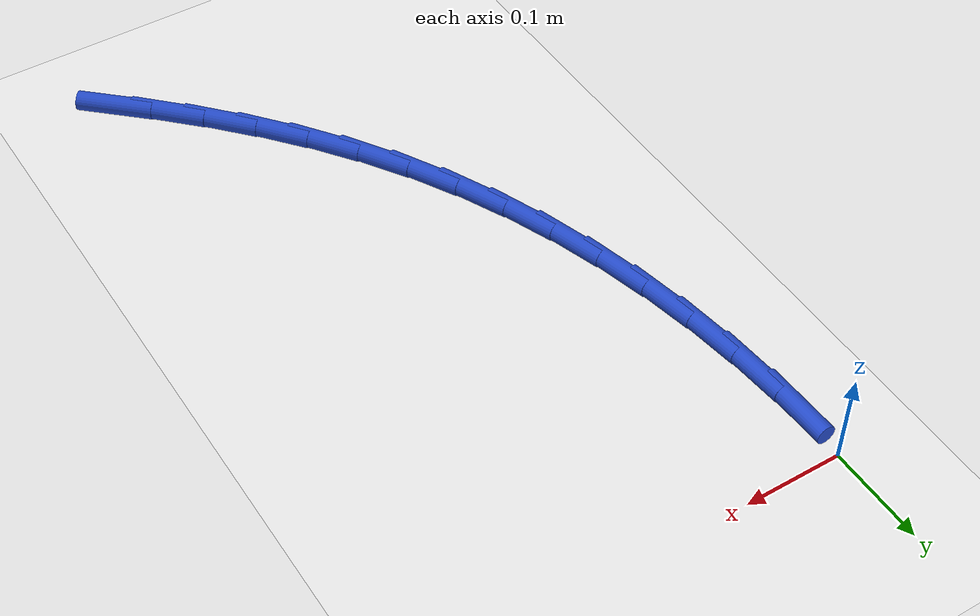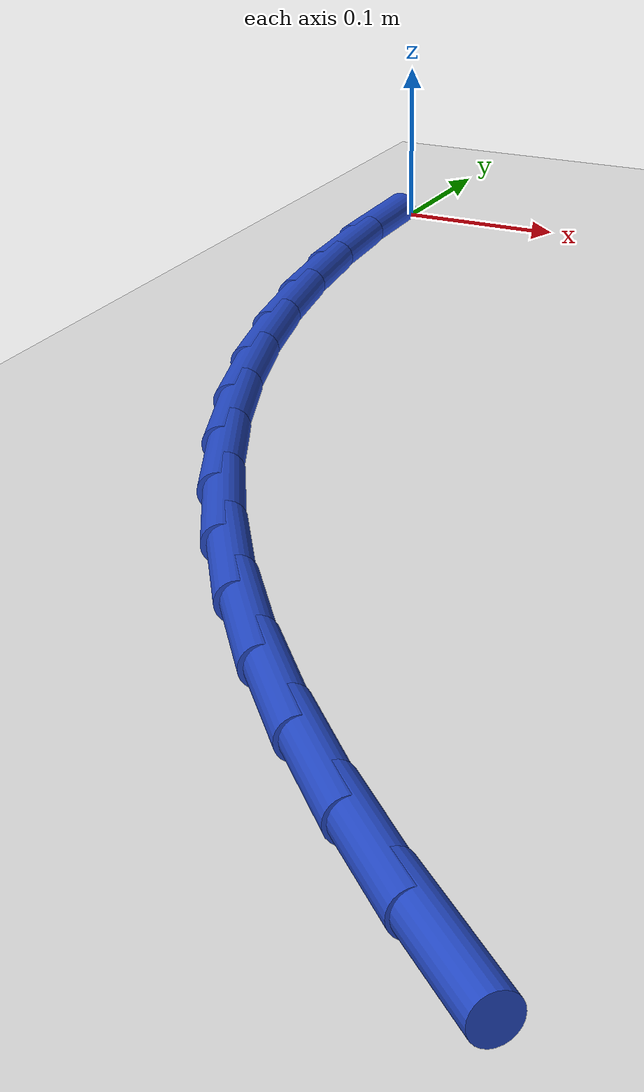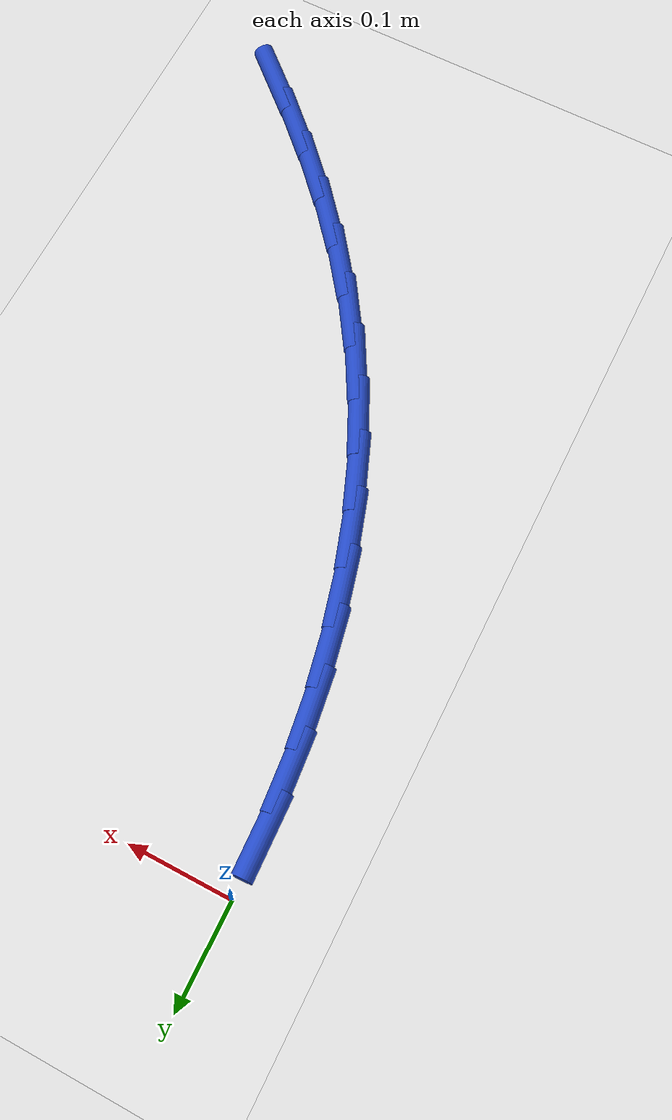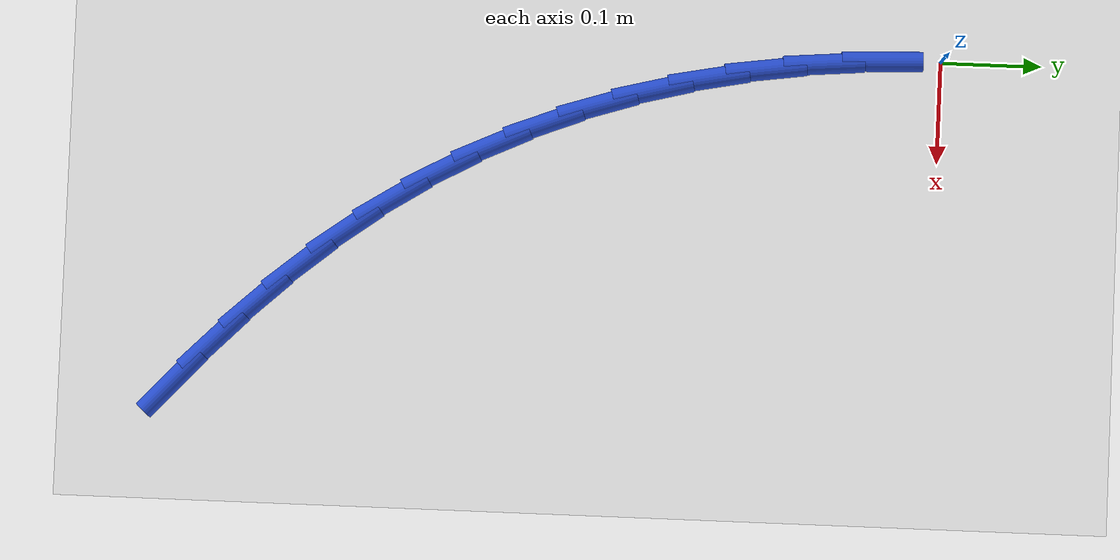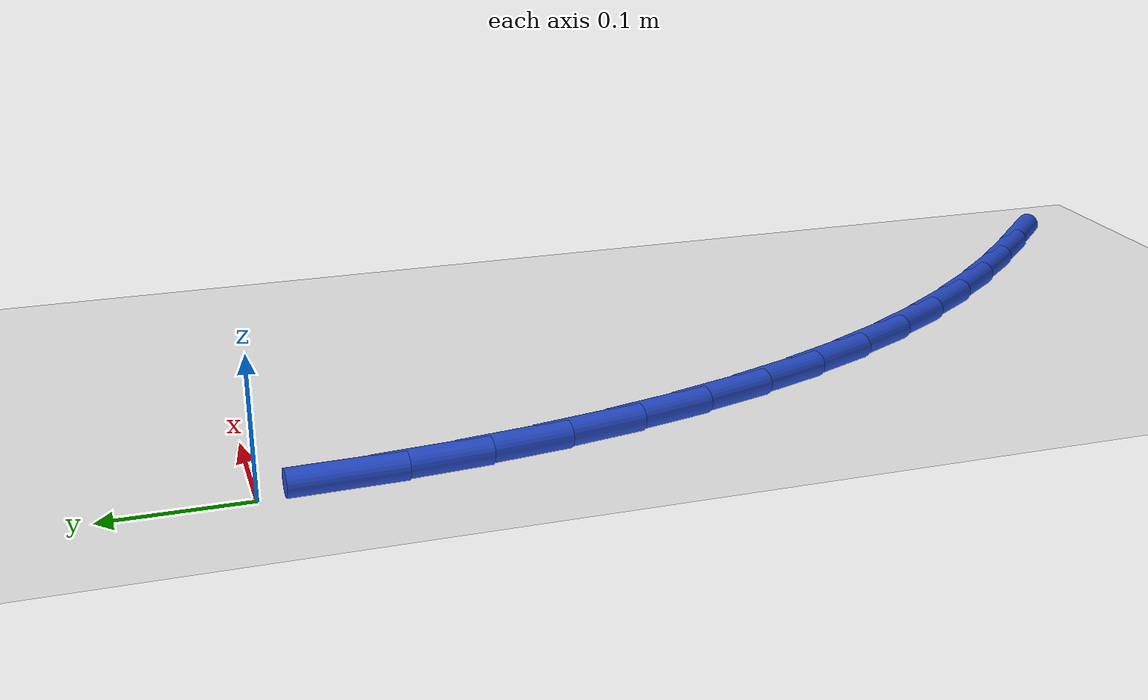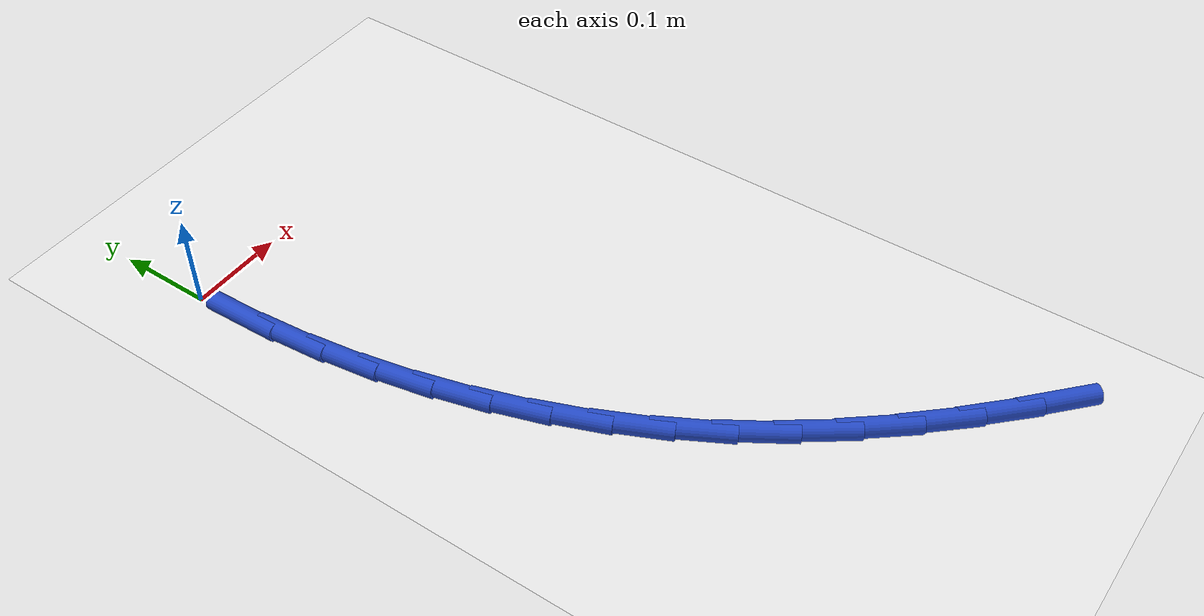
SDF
<sdf version="1.6">
 <world name="default">
  <model name="ground_plane">
   <static>1</static>
   <link name="link">
    <collision name="collision">
     <geometry><plane><normal>0 0 1</normal><size>100 100</size></plane></geometry>
     <surface><friction><ode><mu>100</mu><mu2>50</mu2></ode></friction></surface>
    </collision>
    <visual name="visual">
     <cast_shadows>0</cast_shadows>
     <geometry><plane><normal>0 0 1</normal><size>100 100</size></plane></geometry>
     <material>
      <script><uri>file://media/materials/scripts/gazebo.material</uri><name>Gazebo/WhiteGlow</name></script>
     </material>
    </visual>
   </link>
  </model>
  <model name="line">
   <link name="link_105">
    <pose>0.34368251775665143 -0.741663012240206 0.01 0 1.57 -0.7431842006529641</pose>
    <collision name="collision">
     <geometry><cylinder><radius>0.01</radius><length>0.08</length></cylinder></geometry>
    </collision>
    <visual name="visual">
     <material>
      <script><name>Gazebo/Blue</name><uri>file://media/materials/scripts/gazebo.material</uri></script>
     </material>
     <geometry><cylinder><radius>0.01</radius><length>0.08</length></cylinder></geometry>
    </visual>
   </link>
   <link name="link_106">
    <pose>0.30204947861492987 -0.7034045161289691 0.01 0 1.57 -0.7840330714546652</pose>
    <collision name="collision">
     <geometry><cylinder><radius>0.01</radius><length>0.08</length></cylinder></geometry>
    </collision>
    <visual name="visual">
     <material>
      <script><name>Gazebo/Blue</name><uri>file://media/materials/scripts/gazebo.material</uri></script>
     </material>
     <geometry><cylinder><radius>0.01</radius><length>0.08</length></cylinder></geometry>
    </visual>
   </link>
   <link name="link_107">
    <pose>0.26216180646591725 -0.6636255962703675 0.01 0 1.57 -0.8304283539207813</pose>
    <collision name="collision">
     <geometry><cylinder><radius>0.01</radius><length>0.08</length></cylinder></geometry>
    </collision>
    <visual name="visual">
     <material>
      <script><name>Gazebo/Blue</name><uri>file://media/materials/scripts/gazebo.material</uri></script>
     </material>
     <geometry><cylinder><radius>0.01</radius><length>0.08</length></cylinder></geometry>
    </visual>
   </link>
   <link name="link_108">
    <pose>0.22433551735606722 -0.6222294946271784 0.01 0 1.57 -0.8826118369734751</pose>
    <collision name="collision">
     <geometry><cylinder><radius>0.01</radius><length>0.08</length></cylinder></geometry>
    </collision>
    <visual name="visual">
     <material>
      <script><name>Gazebo/Blue</name><uri>file://media/materials/scripts/gazebo.material</uri></script>
     </material>
     <geometry><cylinder><radius>0.01</radius><length>0.08</length></cylinder></geometry>
    </visual>
   </link>
   <link name="link_109">
    <pose>0.18888662733183484 -0.579119453162181 0.01 0 1.57 -0.9407512387629605</pose>
    <collision name="collision">
     <geometry><cylinder><radius>0.01</radius><length>0.08</length></cylinder></geometry>
    </collision>
    <visual name="visual">
     <material>
      <script><name>Gazebo/Blue</name><uri>file://media/materials/scripts/gazebo.material</uri></script>
     </material>
     <geometry><cylinder><radius>0.01</radius><length>0.08</length></cylinder></geometry>
    </visual>
   </link>
   <link name="link_110">
    <pose>0.15613115243967374 -0.5341987138381531 0.01 0 1.57 -1.0048592606388749</pose>
    <collision name="collision">
     <geometry><cylinder><radius>0.01</radius><length>0.08</length></cylinder></geometry>
    </collision>
    <visual name="visual">
     <material>
      <script><name>Gazebo/Blue</name><uri>file://media/materials/scripts/gazebo.material</uri></script>
     </material>
     <geometry><cylinder><radius>0.01</radius><length>0.08</length></cylinder></geometry>
    </visual>
   </link>
   <link name="link_111">
    <pose>0.1263840195367773 -0.48737136390702657 0.01 0 1.57 -1.0722262604641868</pose>
    <collision name="collision">
     <geometry><cylinder><radius>0.01</radius><length>0.08</length></cylinder></geometry>
    </collision>
    <visual name="visual">
     <material>
      <script><name>Gazebo/Blue</name><uri>file://media/materials/scripts/gazebo.material</uri></script>
     </material>
     <geometry><cylinder><radius>0.01</radius><length>0.08</length></cylinder></geometry>
    </visual>
   </link>
   <link name="link_112">
    <pose>0.09984667742668173 -0.4386295577468035 0.01 0 1.57 -1.1379074792062547</pose>
    <collision name="collision">
     <geometry><cylinder><radius>0.01</radius><length>0.08</length></cylinder></geometry>
    </collision>
    <visual name="visual">
     <material>
      <script><name>Gazebo/Blue</name><uri>file://media/materials/scripts/gazebo.material</uri></script>
     </material>
     <geometry><cylinder><radius>0.01</radius><length>0.08</length></cylinder></geometry>
    </visual>
   </link>
   <link name="link_113">
    <pose>0.0765094052828037 -0.3881293325466473 0.01 0 1.57 -1.2013272430904507</pose>
    <collision name="collision">
     <geometry><cylinder><radius>0.01</radius><length>0.08</length></cylinder></geometry>
    </collision>
    <visual name="visual">
     <material>
      <script><name>Gazebo/Blue</name><uri>file://media/materials/scripts/gazebo.material</uri></script>
     </material>
     <geometry><cylinder><radius>0.01</radius><length>0.08</length></cylinder></geometry>
    </visual>
   </link>
   <link name="link_114">
    <pose>0.05633945954169362 -0.33604459279432625 0.01 0 1.57 -1.262503962190701</pose>
    <collision name="collision">
     <geometry><cylinder><radius>0.01</radius><length>0.08</length></cylinder></geometry>
    </collision>
    <visual name="visual">
     <material>
      <script><name>Gazebo/Blue</name><uri>file://media/materials/scripts/gazebo.material</uri></script>
     </material>
     <geometry><cylinder><radius>0.01</radius><length>0.08</length></cylinder></geometry>
    </visual>
   </link>
   <link name="link_115">
    <pose>0.039304096639901975 -0.28254924297760864 0.01 0 1.57 -1.3215145398354697</pose>
    <collision name="collision">
     <geometry><cylinder><radius>0.01</radius><length>0.08</length></cylinder></geometry>
    </collision>
    <visual name="visual">
     <material>
      <script><name>Gazebo/Blue</name><uri>file://media/materials/scripts/gazebo.material</uri></script>
     </material>
     <geometry><cylinder><radius>0.01</radius><length>0.08</length></cylinder></geometry>
    </visual>
   </link>
   <link name="link_116">
    <pose>0.025370573013979932 -0.22781718758426492 0.01 0 1.57 -1.3784818834009405</pose>
    <collision name="collision">
     <geometry><cylinder><radius>0.01</radius><length>0.08</length></cylinder></geometry>
    </collision>
    <visual name="visual">
     <material>
      <script><name>Gazebo/Blue</name><uri>file://media/materials/scripts/gazebo.material</uri></script>
     </material>
     <geometry><cylinder><radius>0.01</radius><length>0.08</length></cylinder></geometry>
    </visual>
   </link>
   <link name="link_117">
    <pose>0.014506145100477996 -0.1720223311020633 0.01 0 1.57 -1.4335634890146427</pose>
    <collision name="collision">
     <geometry><cylinder><radius>0.01</radius><length>0.08</length></cylinder></geometry>
    </collision>
    <visual name="visual">
     <material>
      <script><name>Gazebo/Blue</name><uri>file://media/materials/scripts/gazebo.material</uri></script>
     </material>
     <geometry><cylinder><radius>0.01</radius><length>0.08</length></cylinder></geometry>
    </visual>
   </link>
   <link name="link_118">
    <pose>0.006678069335946865 -0.1153385780187727 0.01 0 1.57 -1.486941637359983</pose>
    <collision name="collision">
     <geometry><cylinder><radius>0.01</radius><length>0.08</length></cylinder></geometry>
    </collision>
    <visual name="visual">
     <material>
      <script><name>Gazebo/Blue</name><uri>file://media/materials/scripts/gazebo.material</uri></script>
     </material>
     <geometry><cylinder><radius>0.01</radius><length>0.08</length></cylinder></geometry>
    </visual>
   </link>
   <link name="link_119">
    <pose>0.0018536021569372351 -0.05793983282216145 0.01 0 1.57 -1.5388153893126852</pose>
    <collision name="collision">
     <geometry><cylinder><radius>0.01</radius><length>0.08</length></cylinder></geometry>
    </collision>
    <visual name="visual">
     <material>
      <script><name>Gazebo/Blue</name><uri>file://media/materials/scripts/gazebo.material</uri></script>
     </material>
     <geometry><cylinder><radius>0.01</radius><length>0.08</length></cylinder></geometry>
    </visual>
   </link>
  </model>
 </world>
</sdf>
